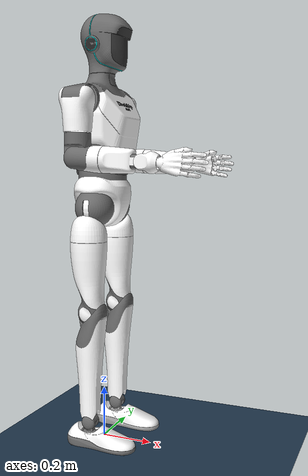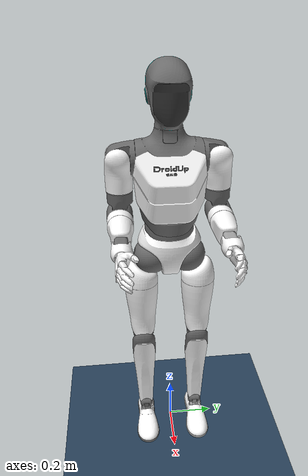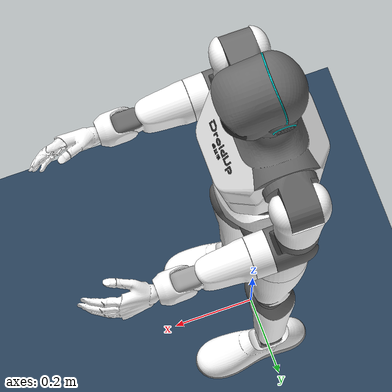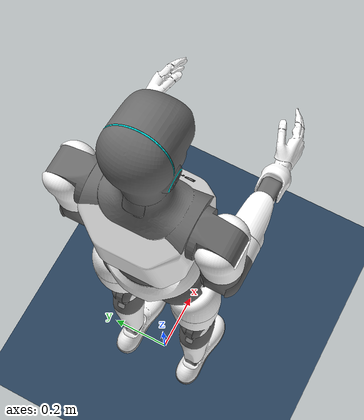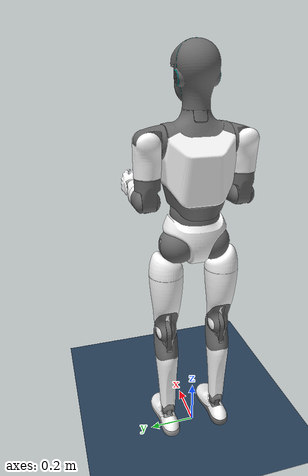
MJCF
<mujoco model="X3 scene">
  <include file="x3.xml"/>

  <statistic center="1.0 0.7 1.0" extent="0.8"/>

  <visual>
    <headlight diffuse="0.6 0.6 0.6" ambient="0.1 0.1 0.1" specular="0.9 0.9 0.9"/>
    <rgba haze="0.15 0.25 0.35 1"/>
    <global azimuth="-140" elevation="-20"/>
  </visual>

  <asset>
    <texture type="skybox" builtin="flat" rgb1="0 0 0" rgb2="0 0 0" width="512" height="3072"/>
    <texture type="2d" name="groundplane" builtin="checker" mark="edge" rgb1="0.2 0.3 0.4" rgb2="0.1 0.2 0.3" markrgb="0.8 0.8 0.8" width="300" height="300"/>
    <material name="groundplane" texture="groundplane" texuniform="true" texrepeat="5 5" reflectance="0.2"/>
  </asset>

  <worldbody>
    <light pos="1 0 3.5" dir="0 0 -1" directional="true"/>
    <geom name="floor" size="0 0 0.05" type="plane" material="groundplane"/>
  </worldbody>
</mujoco>

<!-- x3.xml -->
<mujoco model="x3">
  <compiler angle="radian" meshdir="./meshes/"/>
  <default>
    <joint armature="0.01" frictionloss="0.5"/>
  </default>
  <asset>
    <mesh name="pelvis_link" file="pelvis_link.STL"/>
    <mesh name="L_hip_pitch_link" file="L_hip_pitch_link.STL"/>
    <mesh name="L_hip_roll_link" file="L_hip_roll_link.STL"/>
    <mesh name="L_hip_yaw_link" file="L_hip_yaw_link.STL"/>
    <mesh name="L_hip_yaw_black_link" file="L_hip_yaw_black_link.STL"/>
    <mesh name="L_knee_pitch_black_link" file="L_knee_pitch_black_link.STL"/>
    <mesh name="L_knee_pitch_link" file="L_knee_pitch_link.STL"/>
    <mesh name="L_ankle_pitch_link" file="L_ankle_pitch_link.STL"/>
    <mesh name="L_ankle_roll_link" file="L_ankle_roll_link.STL"/>
    <mesh name="L_ankle_roll_white_link" file="L_ankle_roll_white_link.STL"/>
    <mesh name="R_hip_pitch_link" file="R_hip_pitch_link.STL"/>
    <mesh name="R_hip_roll_link" file="R_hip_roll_link.STL"/>
    <mesh name="R_hip_yaw_link" file="R_hip_yaw_link.STL"/>
    <mesh name="R_hip_yaw_black_link" file="R_hip_yaw_black_link.STL"/>
    <mesh name="R_knee_pitch_black_link" file="R_knee_pitch_black_link.STL"/>
    <mesh name="R_knee_pitch_link" file="R_knee_pitch_link.STL"/>
    <mesh name="R_ankle_pitch_Link" file="R_ankle_pitch_Link.STL"/>
    <mesh name="R_ankle_roll_link" file="R_ankle_roll_link.STL"/>
    <mesh name="R_ankle_roll_white_link" file="R_ankle_roll_white_link.STL"/>
    <mesh name="waist_yaw_link" file="waist_yaw_link.STL"/>
    <mesh name="waist_roll_link" file="waist_roll_link.STL"/>
    <mesh name="torso_link" file="torso_link.STL"/>
    <mesh name="head_pitch_link" file="head_pitch_link.STL"/>
    <mesh name="head_yaw_link" file="head_yaw_link.STL"/>
    <mesh name="head_lamp_link" file="head_lamp_link.STL"/>
    <mesh name="face_link" file="face_link.STL"/>
    <mesh name="L_shoulder_pitch_link" file="L_shoulder_pitch_link.STL"/>
    <mesh name="L_shoulder_roll_link" file="L_shoulder_roll_link.STL"/>
    <mesh name="L_shoulder_yaw_link" file="L_shoulder_yaw_link.STL"/>
    <mesh name="L_elbow_pitch_link" file="L_elbow_pitch_link.STL"/>
    <mesh name="L_elbow_pitch_white_link" file="L_elbow_pitch_white_link.STL"/>
    <mesh name="L_wirst_yaw_link" file="L_wirst_yaw_link.STL"/>
    <mesh name="L_wrist_roll_link" file="L_wrist_roll_link.STL"/>
    <mesh name="L_wrist_pitch_link" file="L_wrist_pitch_link.STL"/>
    <mesh name="R_shoulder_pitch_link" file="R_shoulder_pitch_link.STL"/>
    <mesh name="R_shoulder_roll_link" file="R_shoulder_roll_link.STL"/>
    <mesh name="R_shoulder_yaw_link" file="R_shoulder_yaw_link.STL"/>
    <mesh name="R_elbow_pitch_link" file="R_elbow_pitch_link.STL"/>
    <mesh name="R_elbow_pitch_white_link" file="R_elbow_pitch_white_link.STL"/>
    <mesh name="R_wrist_yaw_link" file="R_wrist_yaw_link.STL"/>
    <mesh name="R_wrist_roll_link" file="R_wrist_roll_link.STL"/>
    <mesh name="R_wrist_pitch_link" file="R_wrist_pitch_link.STL"/>
    <mesh name="logo_link" file="logo_link.STL"/>
    <mesh name="torso_black_link" file="torso_black_link.STL"/>
  </asset>
  <worldbody>
    <body name="pelvis_link" pos="0 0 0.89">
      <inertial pos="0 0.0002374 0.0813881" quat="0.000569064 0.707107 0.000655802 0.707106" mass="2.4" diaginertia="0.0160017 0.0146912 0.0118379"/>
      <joint name="pelvis_link" type="free" limited="false" actuatorfrclimited="false"/>
        <geom type="mesh" contype="0" conaffinity="0" group="1" density="0" rgba="1 1 1 1" mesh="pelvis_link"/>
        <body name="L_hip_pitch_link" pos="0 0.071 0.0419">
          <inertial pos="0 -0.00129733 0.00058752" quat="0.185897 0.682233 0.185897 0.682233" mass="0.35" diaginertia="0.000918414 0.000903866 0.00077282"/>
          <joint name="L_hip_pitch" pos="0 0 0" axis="0 -1 0" range="-0.8727 1.7453" actuatorfrcrange="-72 72"/>
          <geom type="mesh" contype="0" conaffinity="0" group="1" density="0" rgba="0.41961 0.41961 0.41961 1" mesh="L_hip_pitch_link"/>
          <geom type="mesh" rgba="0.41961 0.41961 0.41961 1" mesh="L_hip_pitch_link"/>
          <body name="L_hip_roll_link">
            <inertial pos="0 0.0407838 -0.0918767" quat="0.990995 -0.133896 0 0" mass="3.2" diaginertia="0.0185188 0.0171417 0.00583615"/>
            <joint name="L_hip_roll" pos="0 0 0" axis="1 0 0" range="-0.1309 1.11" actuatorfrcrange="-36 36"/>
            <geom type="mesh" contype="0" conaffinity="0" group="1" density="0" rgba="1 1 1 1" mesh="L_hip_roll_link"/>
            <geom type="mesh" rgba="1 1 1 1" mesh="L_hip_roll_link"/>
            <body name="L_hip_yaw_link" pos="0 0.049 -0.043">
              <inertial pos="0.00425343 7.85609e-06 -0.199997" quat="0.999055 0.000374365 0.0428759 0.00711954" mass="1.71" diaginertia="0.0114561 0.0113538 0.00413144"/>
              <joint name="L_hip_yaw" pos="0 0 0" axis="0 0 1" range="-0.7854 0.7854" actuatorfrcrange="-24 24"/>
              <geom type="mesh" contype="0" conaffinity="0" group="1" density="0" rgba="1 1 1 1" mesh="L_hip_yaw_link"/>
              <geom type="mesh" rgba="1 1 1 1" mesh="L_hip_yaw_link"/>
              <geom type="mesh" contype="0" conaffinity="0" group="1" density="0" rgba="0.41176 0.41176 0.41176 1" mesh="L_hip_yaw_black_link"/>
              <body name="L_knee_pitch_link" pos="0 0 -0.357">
                <inertial pos="0.00458956 -1.75421e-08 -0.222488" quat="0.707079 -0.00608157 -0.00608509 0.707082" mass="1.21" diaginertia="0.025006 0.0247837 0.00248378"/>
                <joint name="L_knee_pitch" pos="0 0 0" axis="0 -1 0" range="-2.3562 0" actuatorfrcrange="-93.6 93.6"/>
                <geom type="mesh" contype="0" conaffinity="0" group="1" density="0" rgba="1 1 1 1" mesh="L_knee_pitch_link"/>
                <geom type="mesh" rgba="1 1 1 1" mesh="L_knee_pitch_link"/>
                <geom type="mesh" contype="0" conaffinity="0" group="1" density="0" rgba="0.41176 0.41176 0.41176 1" mesh="L_knee_pitch_black_link"/>
                <body name="L_ankle_pitch_link" pos="0 0 -0.43">
                  <inertial pos="0 0 -0.0372041" quat="0.707107 0 0 0.707107" mass="0.2" diaginertia="0.00022529 0.00020542 7.465e-05"/>
                  <joint name="L_ankle_pitch" pos="0 0 0" axis="0 -1 0" range="-1.309 1.309" actuatorfrcrange="-64.8 64.8"/>
                  <geom type="mesh" contype="0" conaffinity="0" group="1" density="0" rgba="0.62745 0.62745 0.62745 1" mesh="L_ankle_pitch_link"/>
                  <geom type="mesh" rgba="0.62745 0.62745 0.62745 1" mesh="L_ankle_pitch_link"/>
                  <body name="L_ankle_roll_link" pos="0 0 -0.058">
                    <inertial pos="0.0451791 1.33165e-05 -0.0229204" quat="-1.3455e-06 0.713721 5.69517e-06 0.70043" mass="0.61" diaginertia="0.00726776 0.00677851 0.000813804"/>
                    <joint name="L_ankle_roll" pos="0 0 0" axis="1 0 0" range="-0.5236 0.5236" actuatorfrcrange="-7.7 7.7"/>
                    <geom type="mesh" contype="0" conaffinity="0" group="1" density="0" rgba="0.62745 0.62745 0.62745 1" mesh="L_ankle_roll_link"/>
                    <geom size="0.005" pos="-0.066 0.03 -0.034" rgba="0.62745 0.62745 0.62745 1"/>
                    <geom size="0.005" pos="-0.066 -0.03 -0.034" rgba="0.62745 0.62745 0.62745 1"/>
                    <geom size="0.005" pos="0.16 0.035 -0.034" rgba="0.62745 0.62745 0.62745 1"/>
                    <geom size="0.005" pos="0.16 -0.035 -0.034" rgba="0.62745 0.62745 0.62745 1"/>
                    <geom size="0.1 0.025 0.005" pos="0.042 0 -0.0335" type="box" rgba="0.62745 0.62745 0.62745 1"/>
                    <geom type="mesh" contype="0" conaffinity="0" group="1" density="0" rgba="1 1 1 1" mesh="L_ankle_roll_white_link"/>
                  </body>
                </body>
              </body>
            </body>
          </body>
        </body>
        <body name="R_hip_pitch_link" pos="0 -0.071 0.0419">
          <inertial pos="0 -0.00129733 0.00058752" quat="-0.185897 0.682233 -0.185897 0.682233" mass="0.35" diaginertia="0.000918414 0.000903866 0.00077282"/>
          <joint name="R_hip_pitch" pos="0 0 0" axis="0 -1 0" range="-0.8727 1.7453" actuatorfrcrange="-72 72"/>
          <geom type="mesh" contype="0" conaffinity="0" group="1" density="0" rgba="0.41961 0.41961 0.41961 1" mesh="R_hip_pitch_link"/>
          <geom type="mesh" rgba="0.41961 0.41961 0.41961 1" mesh="R_hip_pitch_link"/>
          <body name="R_hip_roll_link">
            <inertial pos="0 -0.0407834 -0.0918764" quat="0.990995 0.133896 0 0" mass="3.2" diaginertia="0.0185188 0.0171417 0.00583615"/>
            <joint name="R_hip_roll" pos="0 0 0" axis="-1 0 0" range="-0.1309 1.11" actuatorfrcrange="-36 36"/>
            <geom type="mesh" contype="0" conaffinity="0" group="1" density="0" rgba="1 1 1 1" mesh="R_hip_roll_link"/>
            <geom type="mesh" rgba="1 1 1 1" mesh="R_hip_roll_link"/>
            <body name="R_hip_yaw_link" pos="0 -0.049 -0.043">
              <inertial pos="0.00440497 7.63824e-06 -0.203248" quat="0.999302 -0.000365155 0.0364763 -0.00806664" mass="1.75" diaginertia="0.0122359 0.0121461 0.00414385"/>
              <joint name="R_hip_yaw" pos="0 0 0" axis="0 0 -1" range="-0.7854 0.7854" actuatorfrcrange="-24 24"/>
              <geom type="mesh" contype="0" conaffinity="0" group="1" density="0" rgba="1 1 1 1" mesh="R_hip_yaw_link"/>
              <geom type="mesh" rgba="1 1 1 1" mesh="R_hip_yaw_link"/>
              <geom type="mesh" contype="0" conaffinity="0" group="1" density="0" rgba="0.41176 0.41176 0.41176 1" mesh="R_hip_yaw_black_link"/>
              <body name="R_knee_pitch_link" pos="0 0 -0.357">
                <inertial pos="0.00455821 -5.0104e-08 -0.218895" quat="0.70703 -0.00602367 -0.0060205 0.707132" mass="1.25" diaginertia="0.0254933 0.025271 0.00248297"/>
                <joint name="R_knee_pitch" pos="0 0 0" axis="0 -1 0" range="-2.3562 0" actuatorfrcrange="-93.6 93.6"/>
                <geom type="mesh" contype="0" conaffinity="0" group="1" density="0" rgba="1 1 1 1" mesh="R_knee_pitch_link"/>
                <geom type="mesh" rgba="1 1 1 1" mesh="R_knee_pitch_link"/>
                <geom type="mesh" contype="0" conaffinity="0" group="1" density="0" rgba="0.41176 0.41176 0.41176 1" mesh="R_knee_pitch_black_link"/>
                <body name="R_ankle_pitch_Link" pos="0 0 -0.43">
                  <inertial pos="0 0 -0.0372041" quat="0.707107 0 0 0.707107" mass="0.2" diaginertia="0.00022529 0.00020542 7.465e-05"/>
                  <joint name="R_ankle_pitch" pos="0 0 0" axis="0 -1 0" range="-1.309 1.309" actuatorfrcrange="-64.8 64.8"/>
                  <geom type="mesh" contype="0" conaffinity="0" group="1" density="0" rgba="0.41961 0.41961 0.41961 1" mesh="R_ankle_pitch_Link"/>
                  <geom type="mesh" rgba="0.41961 0.41961 0.41961 1" mesh="R_ankle_pitch_Link"/>
                  <body name="R_ankle_roll_link" pos="0 0 -0.058">
                    <inertial pos="0.0456416 1.25084e-05 -0.0210409" quat="1.95604e-05 0.713285 1.22088e-05 0.700875" mass="0.65" diaginertia="0.00726958 0.00681564 0.000849123"/>
                    <joint name="R_ankle_roll" pos="0 0 0" axis="-1 0 0" range="-0.5236 0.5236" actuatorfrcrange="-7.7 7.7"/>
                    <geom type="mesh" contype="0" conaffinity="0" group="1" density="0" rgba="0.41961 0.41961 0.41961 1" mesh="R_ankle_roll_link"/>
                    <geom size="0.005" pos="-0.066 0.03 -0.034" rgba="0.41961 0.41961 0.41961 1"/>
                    <geom size="0.005" pos="-0.066 -0.03 -0.034" rgba="0.41961 0.41961 0.41961 1"/>
                    <geom size="0.005" pos="0.16 0.035 -0.034" rgba="0.41961 0.41961 0.41961 1"/>
                    <geom size="0.005" pos="0.16 -0.035 -0.034" rgba="0.41961 0.41961 0.41961 1"/>
                    <geom size="0.1 0.025 0.005" pos="0.042 0 -0.0335" type="box" rgba="0.41961 0.41961 0.41961 1"/>
                    <geom type="mesh" contype="0" conaffinity="0" group="1" density="0" rgba="1 1 1 1" mesh="R_ankle_roll_white_link"/>
                  </body>
                </body>
              </body>
            </body>
          </body>
        </body>
        <body name="waist_yaw_link" pos="0 0 0.1716">
          <inertial pos="0 0 0.00521207" quat="-4.30861e-05 0.707107 -4.30861e-05 0.707107" mass="0.3" diaginertia="0.00146289 0.00113466 0.00106795"/>
          <joint name="waist_yaw" pos="0 0 0" axis="0 0 1" range="-0.7854 0.7854" actuatorfrcrange="-72 72"/>
          <geom type="mesh" contype="0" conaffinity="0" group="1" density="0" rgba="0.41961 0.41961 0.41961 1" mesh="waist_yaw_link"/>
          <body name="waist_roll_link">
            <inertial pos="0.002 -5.11531e-06 0.212" euler="0 0 0" mass="15.32" diaginertia="0.4 0.4 0.1"/>
            <joint name="waist_roll" pos="0 0 0" axis="1 0 0" range="-0.4363 0.4363" actuatorfrcrange="-36 36"/>
            <geom type="mesh" contype="0" conaffinity="0" group="1" density="0" rgba="1 1 1 1" mesh="waist_roll_link"/>
            <geom pos="0 0 -0.1716" type="mesh" contype="0" conaffinity="0" group="1" density="0" rgba="1 1 1 1" mesh="torso_link"/>
            <geom pos="0 0 -0.1716" type="mesh" rgba="1 1 1 1" mesh="torso_link"/>
            <geom pos="0 0 0.346" type="mesh" contype="0" conaffinity="0" group="1" density="0" rgba="0.41961 0.41961 0.41961 1" mesh="head_pitch_link"/>
            <geom pos="0 0 0.40728" type="mesh" contype="0" conaffinity="0" group="1" density="0" rgba="0.41961 0.41961 0.41961 1" mesh="head_yaw_link"/>
            <geom pos="0 0 0.40728" type="mesh" contype="0" conaffinity="0" group="1" density="0" rgba="0 1 1 1" mesh="head_lamp_link"/>
            <geom pos="0 0 0.40728" type="mesh" contype="0" conaffinity="0" group="1" density="0" rgba="0.2 0.2 0.2 1" mesh="face_link"/>
            <geom pos="-0.006 0.1025 0.274" type="mesh" contype="0" conaffinity="0" group="1" density="0" rgba="0.41176 0.41176 0.41176 1" mesh="L_shoulder_pitch_link"/>
            <geom pos="-0.006 0.187 0.274" type="mesh" contype="0" conaffinity="0" group="1" density="0" rgba="1 1 1 1" mesh="L_shoulder_roll_link"/>
            <geom pos="-0.00585 0.187 0.138" type="mesh" contype="0" conaffinity="0" group="1" density="0" rgba="0.41176 0.41176 0.41176 1" mesh="L_shoulder_yaw_link"/>
            <geom pos="-0.00585 0.187 0.058134" quat="0.729299 0 -0.684195 0" type="mesh" contype="0" conaffinity="0" group="1" density="0" rgba="0.41176 0.41176 0.41176 1" mesh="L_elbow_pitch_link"/>
            <geom pos="-0.00585 0.187 0.058134" quat="0.729299 0 -0.684195 0" type="mesh" contype="0" conaffinity="0" group="1" density="0" rgba="1 1 1 1" mesh="L_elbow_pitch_white_link"/>
            <geom pos="0.111641 0.191 0.0506284" quat="0.729299 0 -0.684195 0" type="mesh" contype="0" conaffinity="0" group="1" density="0" rgba="1 1 1 1" mesh="L_wirst_yaw_link"/>
            <geom pos="0.227305 0.191 0.0432394" quat="0.729299 0 -0.684195 0" type="mesh" contype="0" conaffinity="0" group="1" density="0" rgba="0.62745 0.62745 0.62745 1" mesh="L_wrist_roll_link"/>
            <geom pos="0.257244 0.191 0.0413268" quat="0.729299 0 -0.684195 0" type="mesh" contype="0" conaffinity="0" group="1" density="0" rgba="1 1 1 1" mesh="L_wrist_pitch_link"/>
            <geom pos="-0.006 -0.1025 0.274" type="mesh" contype="0" conaffinity="0" group="1" density="0" rgba="0.41961 0.41961 0.41961 1" mesh="R_shoulder_pitch_link"/>
            <geom pos="-0.006 -0.187 0.274" type="mesh" contype="0" conaffinity="0" group="1" density="0" rgba="1 1 1 1" mesh="R_shoulder_roll_link"/>
            <geom pos="-0.00585 -0.187 0.138" type="mesh" contype="0" conaffinity="0" group="1" density="0" rgba="0.41176 0.41176 0.41176 1" mesh="R_shoulder_yaw_link"/>
            <geom pos="-0.00585 -0.187 0.058134" quat="0.729299 0 -0.684195 0" type="mesh" contype="0" conaffinity="0" group="1" density="0" rgba="0.41176 0.41176 0.41176 1" mesh="R_elbow_pitch_link"/>
            <geom pos="-0.00585 -0.187 0.058134" quat="0.729299 0 -0.684195 0" type="mesh" contype="0" conaffinity="0" group="1" density="0" rgba="1 1 1 1" mesh="R_elbow_pitch_white_link"/>
            <geom pos="0.111641 -0.191 0.0506284" quat="0.729299 0 -0.684195 0" type="mesh" contype="0" conaffinity="0" group="1" density="0" rgba="1 1 1 1" mesh="R_wrist_yaw_link"/>
            <geom pos="0.227305 -0.191 0.0432394" quat="0.729299 0 -0.684195 0" type="mesh" contype="0" conaffinity="0" group="1" density="0" rgba="0.41961 0.41961 0.41961 1" mesh="R_wrist_roll_link"/>
            <geom pos="0.257244 -0.191 0.0413268" quat="0.729299 0 -0.684195 0" type="mesh" contype="0" conaffinity="0" group="1" density="0" rgba="1 1 1 1" mesh="R_wrist_pitch_link"/>
            <geom pos="0 0 -0.1716" type="mesh" contype="0" conaffinity="0" group="1" density="0" rgba="0.2 0.2 0.2 1" mesh="logo_link"/>
            <geom pos="0 0 -0.1716" type="mesh" contype="0" conaffinity="0" group="1" density="0" rgba="0.41961 0.41961 0.41961 1" mesh="torso_black_link"/>
          </body>
       </body>
    </body>
  </worldbody>
    <actuator>
    <motor name="jhpL" joint="L_hip_pitch" /> <!-- Leg Left -->
    <motor name="jhrL" joint="L_hip_roll" />
    <motor name="jhyL" joint="L_hip_yaw" />
    <motor name="jkL" joint="L_knee_pitch" />
    <motor name="japL" joint="L_ankle_pitch" />
    <motor name="jarL" joint="L_ankle_roll" />

    <motor name="jhpR" joint="R_hip_pitch" /> <!-- Leg Right -->
    <motor name="jhrR" joint="R_hip_roll" />
    <motor name="jhyR" joint="R_hip_yaw" />
    <motor name="jkR" joint="R_knee_pitch" />
    <motor name="japR" joint="R_ankle_pitch" />
    <motor name="jarR" joint="R_ankle_roll" />

    <motor name="jwa" joint="waist_yaw" /><!-- Waist -->
    <motor name="jwr" joint="waist_roll" />

  </actuator>
  <!-- setup scene -->
  <statistic center="1.0 0.7 1.0" extent="0.8"/>
  <visual>
    <headlight diffuse="0.6 0.6 0.6" ambient="0.1 0.1 0.1" specular="0.9 0.9 0.9"/>
    <rgba haze="0.15 0.25 0.35 1"/>
    <global azimuth="-140" elevation="-20"/>
  </visual>
  <asset>
    <texture type="skybox" builtin="flat" rgb1="0 0 0" rgb2="0 0 0" width="512" height="3072"/>
    <texture type="2d" name="groundplane" builtin="checker" mark="edge" rgb1="0.2 0.3 0.4" rgb2="0.1 0.2 0.3" markrgb="0.8 0.8 0.8" width="300" height="300"/>
    <material name="groundplane" texture="groundplane" texuniform="true" texrepeat="5 5" reflectance="0.2"/>
  </asset>
  <worldbody>
    <light pos="1 0 3.5" dir="0 0 -1" directional="true"/>
    <geom name="floor" size="0 0 0.05" type="plane" material="groundplane"/>
  </worldbody>
</mujoco>
